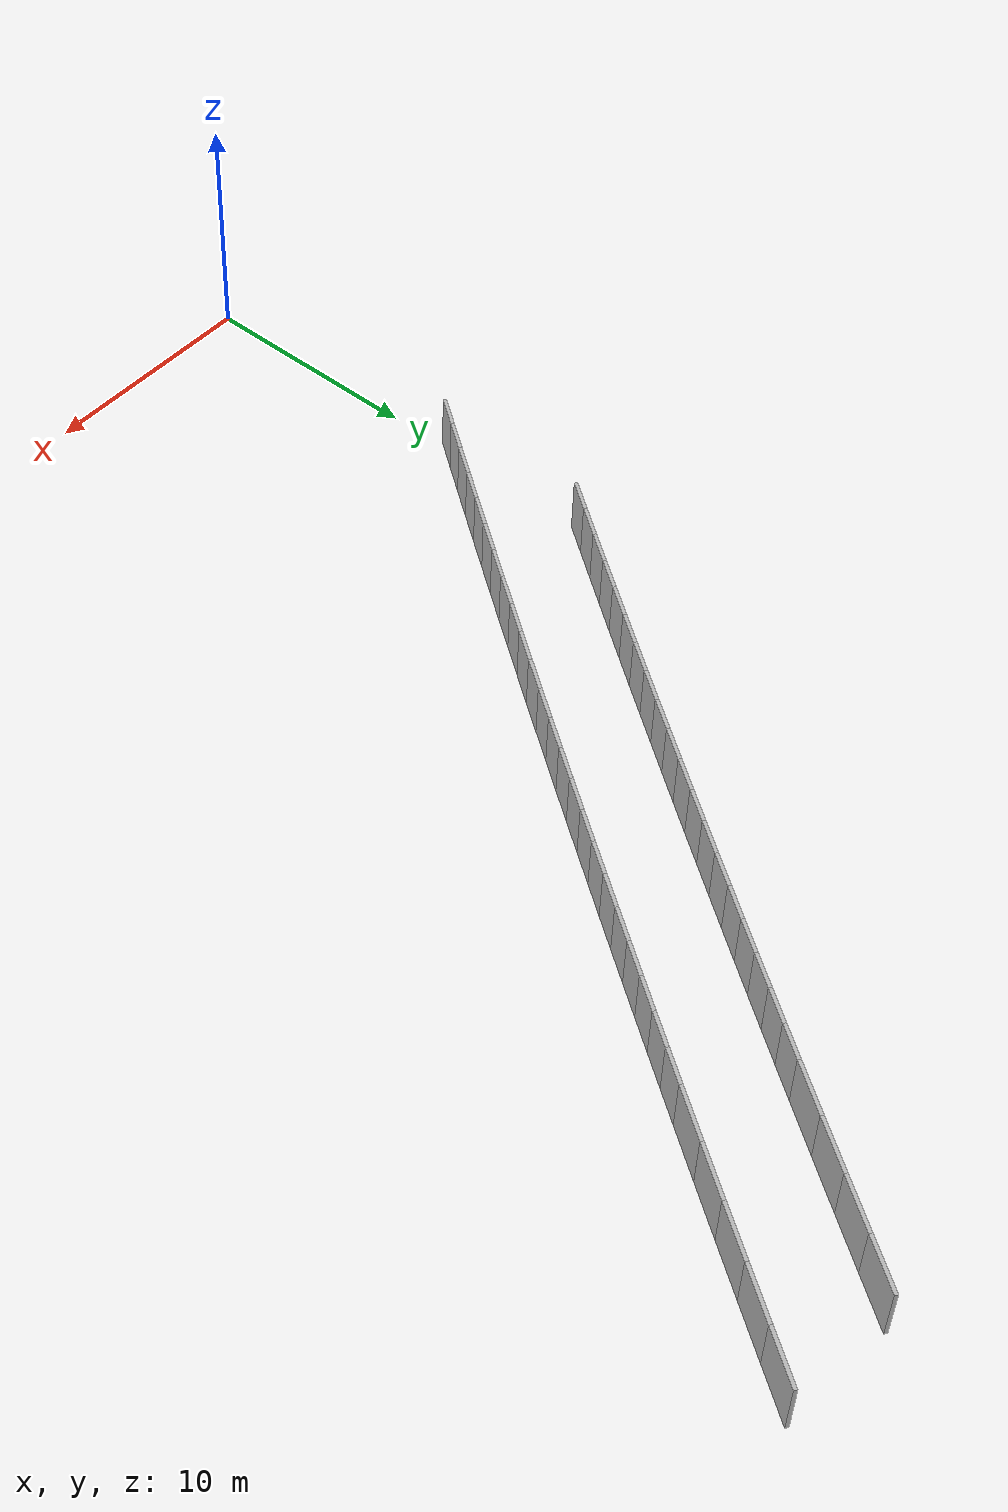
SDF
<?xml version="1.0" ?>
<sdf version="1.6">
  <model name="sps_4313">
    <pose frame="">0 0 0 0 -0 0</pose>
    <static>1</static>
    <self_collide>0</self_collide>
    <allow_auto_disable>0</allow_auto_disable>
    <link name="Wall4267">
      <kinematic>0</kinematic>
      <gravity>1</gravity>
      <self_collide>0</self_collide>
      <collision name="collision">
        <geometry>
          <box>
            <size>1.50309 0.15 2.5</size>
          </box>
        </geometry>
        <pose frame="">0 0 0 0 -0 0</pose>
      </collision>
      <visual name="visual">
        <geometry>
          <box>
            <size>1.50309 0.15 2.5</size>
          </box>
        </geometry>
        <pose frame="">0 0 0 0 -0 0</pose>
        <cast_shadows>1</cast_shadows>
        <transparency>0.0</transparency>
      </visual>
      <pose frame="">0.239951 13.1362 1.25 0 -0 0.923023</pose>
    </link>
    <link name="Wall4268">
      <kinematic>0</kinematic>
      <gravity>1</gravity>
      <self_collide>0</self_collide>
      <collision name="collision">
        <geometry>
          <box>
            <size>1.50314 0.15 2.5</size>
          </box>
        </geometry>
        <pose frame="">0 0 0 0 -0 0</pose>
      </collision>
      <visual name="visual">
        <geometry>
          <box>
            <size>1.50314 0.15 2.5</size>
          </box>
        </geometry>
        <pose frame="">0 0 0 0 -0 0</pose>
        <cast_shadows>1</cast_shadows>
        <transparency>0.0</transparency>
      </visual>
      <pose frame="">1.14605 14.3355 1.25 0 -0 0.924526</pose>
    </link>
    <link name="Wall4269">
      <kinematic>0</kinematic>
      <gravity>1</gravity>
      <self_collide>0</self_collide>
      <collision name="collision">
        <geometry>
          <box>
            <size>1.50305 0.15 2.5</size>
          </box>
        </geometry>
        <pose frame="">0 0 0 0 -0 0</pose>
      </collision>
      <visual name="visual">
        <geometry>
          <box>
            <size>1.50305 0.15 2.5</size>
          </box>
        </geometry>
        <pose frame="">0 0 0 0 -0 0</pose>
        <cast_shadows>1</cast_shadows>
        <transparency>0.0</transparency>
      </visual>
      <pose frame="">2.05025 15.5362 1.25 0 -0 0.926158</pose>
    </link>
    <link name="Wall4270">
      <kinematic>0</kinematic>
      <gravity>1</gravity>
      <self_collide>0</self_collide>
      <collision name="collision">
        <geometry>
          <box>
            <size>1.50306 0.15 2.5</size>
          </box>
        </geometry>
        <pose frame="">0 0 0 0 -0 0</pose>
      </collision>
      <visual name="visual">
        <geometry>
          <box>
            <size>1.50306 0.15 2.5</size>
          </box>
        </geometry>
        <pose frame="">0 0 0 0 -0 0</pose>
        <cast_shadows>1</cast_shadows>
        <transparency>0.0</transparency>
      </visual>
      <pose frame="">2.95257 16.7383 1.25 0 -0 0.927636</pose>
    </link>
    <link name="Wall4271">
      <kinematic>0</kinematic>
      <gravity>1</gravity>
      <self_collide>0</self_collide>
      <collision name="collision">
        <geometry>
          <box>
            <size>1.50314 0.15 2.5</size>
          </box>
        </geometry>
        <pose frame="">0 0 0 0 -0 0</pose>
      </collision>
      <visual name="visual">
        <geometry>
          <box>
            <size>1.50314 0.15 2.5</size>
          </box>
        </geometry>
        <pose frame="">0 0 0 0 -0 0</pose>
        <cast_shadows>1</cast_shadows>
        <transparency>0.0</transparency>
      </visual>
      <pose frame="">3.85296 17.9419 1.25 0 -0 0.929399</pose>
    </link>
    <link name="Wall4272">
      <kinematic>0</kinematic>
      <gravity>1</gravity>
      <self_collide>0</self_collide>
      <collision name="collision">
        <geometry>
          <box>
            <size>1.5031 0.15 2.5</size>
          </box>
        </geometry>
        <pose frame="">0 0 0 0 -0 0</pose>
      </collision>
      <visual name="visual">
        <geometry>
          <box>
            <size>1.5031 0.15 2.5</size>
          </box>
        </geometry>
        <pose frame="">0 0 0 0 -0 0</pose>
        <cast_shadows>1</cast_shadows>
        <transparency>0.0</transparency>
      </visual>
      <pose frame="">4.75146 19.1469 1.25 0 -0 0.930795</pose>
    </link>
    <link name="Wall4273">
      <kinematic>0</kinematic>
      <gravity>1</gravity>
      <self_collide>0</self_collide>
      <collision name="collision">
        <geometry>
          <box>
            <size>1.50308 0.15 2.5</size>
          </box>
        </geometry>
        <pose frame="">0 0 0 0 -0 0</pose>
      </collision>
      <visual name="visual">
        <geometry>
          <box>
            <size>1.50308 0.15 2.5</size>
          </box>
        </geometry>
        <pose frame="">0 0 0 0 -0 0</pose>
        <cast_shadows>1</cast_shadows>
        <transparency>0.0</transparency>
      </visual>
      <pose frame="">5.64806 20.3533 1.25 0 -0 0.932509</pose>
    </link>
    <link name="Wall4274">
      <kinematic>0</kinematic>
      <gravity>1</gravity>
      <self_collide>0</self_collide>
      <collision name="collision">
        <geometry>
          <box>
            <size>1.5031 0.15 2.5</size>
          </box>
        </geometry>
        <pose frame="">0 0 0 0 -0 0</pose>
      </collision>
      <visual name="visual">
        <geometry>
          <box>
            <size>1.5031 0.15 2.5</size>
          </box>
        </geometry>
        <pose frame="">0 0 0 0 -0 0</pose>
        <cast_shadows>1</cast_shadows>
        <transparency>0.0</transparency>
      </visual>
      <pose frame="">6.54266 21.5612 1.25 0 -0 0.934133</pose>
    </link>
    <link name="Wall4275">
      <kinematic>0</kinematic>
      <gravity>1</gravity>
      <self_collide>0</self_collide>
      <collision name="collision">
        <geometry>
          <box>
            <size>1.50325 0.15 2.5</size>
          </box>
        </geometry>
        <pose frame="">0 0 0 0 -0 0</pose>
      </collision>
      <visual name="visual">
        <geometry>
          <box>
            <size>1.50325 0.15 2.5</size>
          </box>
        </geometry>
        <pose frame="">0 0 0 0 -0 0</pose>
        <cast_shadows>1</cast_shadows>
        <transparency>0.0</transparency>
      </visual>
      <pose frame="">7.43545 22.7705 1.25 0 -0 0.93557</pose>
    </link>
    <link name="Wall4276">
      <kinematic>0</kinematic>
      <gravity>1</gravity>
      <self_collide>0</self_collide>
      <collision name="collision">
        <geometry>
          <box>
            <size>1.50292 0.15 2.5</size>
          </box>
        </geometry>
        <pose frame="">0 0 0 0 -0 0</pose>
      </collision>
      <visual name="visual">
        <geometry>
          <box>
            <size>1.50292 0.15 2.5</size>
          </box>
        </geometry>
        <pose frame="">0 0 0 0 -0 0</pose>
        <cast_shadows>1</cast_shadows>
        <transparency>0.0</transparency>
      </visual>
      <pose frame="">8.32635 23.9811 1.25 0 -0 0.937172</pose>
    </link>
    <link name="Wall4277">
      <kinematic>0</kinematic>
      <gravity>1</gravity>
      <self_collide>0</self_collide>
      <collision name="collision">
        <geometry>
          <box>
            <size>1.50368 0.15 2.5</size>
          </box>
        </geometry>
        <pose frame="">0 0 0 0 -0 0</pose>
      </collision>
      <visual name="visual">
        <geometry>
          <box>
            <size>1.50368 0.15 2.5</size>
          </box>
        </geometry>
        <pose frame="">0 0 0 0 -0 0</pose>
        <cast_shadows>1</cast_shadows>
        <transparency>0.0</transparency>
      </visual>
      <pose frame="">9.21545 25.1933 1.25 0 -0 0.93875</pose>
    </link>
    <link name="Wall4278">
      <kinematic>0</kinematic>
      <gravity>1</gravity>
      <self_collide>0</self_collide>
      <collision name="collision">
        <geometry>
          <box>
            <size>1.50314 0.15 2.5</size>
          </box>
        </geometry>
        <pose frame="">0 0 0 0 -0 0</pose>
      </collision>
      <visual name="visual">
        <geometry>
          <box>
            <size>1.50314 0.15 2.5</size>
          </box>
        </geometry>
        <pose frame="">0 0 0 0 -0 0</pose>
        <cast_shadows>1</cast_shadows>
        <transparency>0.0</transparency>
      </visual>
      <pose frame="">10.1027 26.407 1.25 0 -0 0.940403</pose>
    </link>
    <link name="Wall4279">
      <kinematic>0</kinematic>
      <gravity>1</gravity>
      <self_collide>0</self_collide>
      <collision name="collision">
        <geometry>
          <box>
            <size>1.50312 0.15 2.5</size>
          </box>
        </geometry>
        <pose frame="">0 0 0 0 -0 0</pose>
      </collision>
      <visual name="visual">
        <geometry>
          <box>
            <size>1.50312 0.15 2.5</size>
          </box>
        </geometry>
        <pose frame="">0 0 0 0 -0 0</pose>
        <cast_shadows>1</cast_shadows>
        <transparency>0.0</transparency>
      </visual>
      <pose frame="">10.9878 27.6219 1.25 0 -0 0.941946</pose>
    </link>
    <link name="Wall4280">
      <kinematic>0</kinematic>
      <gravity>1</gravity>
      <self_collide>0</self_collide>
      <collision name="collision">
        <geometry>
          <box>
            <size>1.5031 0.15 2.5</size>
          </box>
        </geometry>
        <pose frame="">0 0 0 0 -0 0</pose>
      </collision>
      <visual name="visual">
        <geometry>
          <box>
            <size>1.5031 0.15 2.5</size>
          </box>
        </geometry>
        <pose frame="">0 0 0 0 -0 0</pose>
        <cast_shadows>1</cast_shadows>
        <transparency>0.0</transparency>
      </visual>
      <pose frame="">11.8709 28.8382 1.25 0 -0 0.943546</pose>
    </link>
    <link name="Wall4281">
      <kinematic>0</kinematic>
      <gravity>1</gravity>
      <self_collide>0</self_collide>
      <collision name="collision">
        <geometry>
          <box>
            <size>1.50315 0.15 2.5</size>
          </box>
        </geometry>
        <pose frame="">0 0 0 0 -0 0</pose>
      </collision>
      <visual name="visual">
        <geometry>
          <box>
            <size>1.50315 0.15 2.5</size>
          </box>
        </geometry>
        <pose frame="">0 0 0 0 -0 0</pose>
        <cast_shadows>1</cast_shadows>
        <transparency>0.0</transparency>
      </visual>
      <pose frame="">12.7522 30.0559 1.25 0 -0 0.94517</pose>
    </link>
    <link name="Wall4282">
      <kinematic>0</kinematic>
      <gravity>1</gravity>
      <self_collide>0</self_collide>
      <collision name="collision">
        <geometry>
          <box>
            <size>1.50302 0.15 2.5</size>
          </box>
        </geometry>
        <pose frame="">0 0 0 0 -0 0</pose>
      </collision>
      <visual name="visual">
        <geometry>
          <box>
            <size>1.50302 0.15 2.5</size>
          </box>
        </geometry>
        <pose frame="">0 0 0 0 -0 0</pose>
        <cast_shadows>1</cast_shadows>
        <transparency>0.0</transparency>
      </visual>
      <pose frame="">13.6314 31.275 1.25 0 -0 0.946813</pose>
    </link>
    <link name="Wall4283">
      <kinematic>0</kinematic>
      <gravity>1</gravity>
      <self_collide>0</self_collide>
      <collision name="collision">
        <geometry>
          <box>
            <size>1.50313 0.15 2.5</size>
          </box>
        </geometry>
        <pose frame="">0 0 0 0 -0 0</pose>
      </collision>
      <visual name="visual">
        <geometry>
          <box>
            <size>1.50313 0.15 2.5</size>
          </box>
        </geometry>
        <pose frame="">0 0 0 0 -0 0</pose>
        <cast_shadows>1</cast_shadows>
        <transparency>0.0</transparency>
      </visual>
      <pose frame="">14.5087 32.4955 1.25 0 -0 0.948314</pose>
    </link>
    <link name="Wall4284">
      <kinematic>0</kinematic>
      <gravity>1</gravity>
      <self_collide>0</self_collide>
      <collision name="collision">
        <geometry>
          <box>
            <size>1.50295 0.15 2.5</size>
          </box>
        </geometry>
        <pose frame="">0 0 0 0 -0 0</pose>
      </collision>
      <visual name="visual">
        <geometry>
          <box>
            <size>1.50295 0.15 2.5</size>
          </box>
        </geometry>
        <pose frame="">0 0 0 0 -0 0</pose>
        <cast_shadows>1</cast_shadows>
        <transparency>0.0</transparency>
      </visual>
      <pose frame="">15.3841 33.7173 1.25 0 -0 0.949876</pose>
    </link>
    <link name="Wall4285">
      <kinematic>0</kinematic>
      <gravity>1</gravity>
      <self_collide>0</self_collide>
      <collision name="collision">
        <geometry>
          <box>
            <size>1.50307 0.15 2.5</size>
          </box>
        </geometry>
        <pose frame="">0 0 0 0 -0 0</pose>
      </collision>
      <visual name="visual">
        <geometry>
          <box>
            <size>1.50307 0.15 2.5</size>
          </box>
        </geometry>
        <pose frame="">0 0 0 0 -0 0</pose>
        <cast_shadows>1</cast_shadows>
        <transparency>0.0</transparency>
      </visual>
      <pose frame="">16.2574 34.9405 1.25 0 -0 0.951581</pose>
    </link>
    <link name="Wall4286">
      <kinematic>0</kinematic>
      <gravity>1</gravity>
      <self_collide>0</self_collide>
      <collision name="collision">
        <geometry>
          <box>
            <size>1.50299 0.15 2.5</size>
          </box>
        </geometry>
        <pose frame="">0 0 0 0 -0 0</pose>
      </collision>
      <visual name="visual">
        <geometry>
          <box>
            <size>1.50299 0.15 2.5</size>
          </box>
        </geometry>
        <pose frame="">0 0 0 0 -0 0</pose>
        <cast_shadows>1</cast_shadows>
        <transparency>0.0</transparency>
      </visual>
      <pose frame="">17.1289 36.1651 1.25 0 -0 0.952987</pose>
    </link>
    <link name="Wall4287">
      <kinematic>0</kinematic>
      <gravity>1</gravity>
      <self_collide>0</self_collide>
      <collision name="collision">
        <geometry>
          <box>
            <size>1.5032 0.15 2.5</size>
          </box>
        </geometry>
        <pose frame="">0 0 0 0 -0 0</pose>
      </collision>
      <visual name="visual">
        <geometry>
          <box>
            <size>1.5032 0.15 2.5</size>
          </box>
        </geometry>
        <pose frame="">0 0 0 0 -0 0</pose>
        <cast_shadows>1</cast_shadows>
        <transparency>0.0</transparency>
      </visual>
      <pose frame="">17.9986 37.3911 1.25 0 -0 0.954682</pose>
    </link>
    <link name="Wall4288">
      <kinematic>0</kinematic>
      <gravity>1</gravity>
      <self_collide>0</self_collide>
      <collision name="collision">
        <geometry>
          <box>
            <size>1.50325 0.15 2.5</size>
          </box>
        </geometry>
        <pose frame="">0 0 0 0 -0 0</pose>
      </collision>
      <visual name="visual">
        <geometry>
          <box>
            <size>1.50325 0.15 2.5</size>
          </box>
        </geometry>
        <pose frame="">0 0 0 0 -0 0</pose>
        <cast_shadows>1</cast_shadows>
        <transparency>0.0</transparency>
      </visual>
      <pose frame="">18.8663 38.6186 1.25 0 -0 0.956248</pose>
    </link>
    <link name="Wall4289">
      <kinematic>0</kinematic>
      <gravity>1</gravity>
      <self_collide>0</self_collide>
      <collision name="collision">
        <geometry>
          <box>
            <size>1.50313 0.15 2.5</size>
          </box>
        </geometry>
        <pose frame="">0 0 0 0 -0 0</pose>
      </collision>
      <visual name="visual">
        <geometry>
          <box>
            <size>1.50313 0.15 2.5</size>
          </box>
        </geometry>
        <pose frame="">0 0 0 0 -0 0</pose>
        <cast_shadows>1</cast_shadows>
        <transparency>0.0</transparency>
      </visual>
      <pose frame="">19.732 39.8474 1.25 0 -0 0.957778</pose>
    </link>
    <link name="Wall4290">
      <kinematic>0</kinematic>
      <gravity>1</gravity>
      <self_collide>0</self_collide>
      <collision name="collision">
        <geometry>
          <box>
            <size>2.25437 0.15 2.5</size>
          </box>
        </geometry>
        <pose frame="">0 0 0 0 -0 0</pose>
      </collision>
      <visual name="visual">
        <geometry>
          <box>
            <size>2.25437 0.15 2.5</size>
          </box>
        </geometry>
        <pose frame="">0 0 0 0 -0 0</pose>
        <cast_shadows>1</cast_shadows>
        <transparency>0.0</transparency>
      </visual>
      <pose frame="">20.8111 41.3854 1.25 0 -0 0.959844</pose>
    </link>
    <link name="Wall4291">
      <kinematic>0</kinematic>
      <gravity>1</gravity>
      <self_collide>0</self_collide>
      <collision name="collision">
        <geometry>
          <box>
            <size>2.25446 0.15 2.5</size>
          </box>
        </geometry>
        <pose frame="">0 0 0 0 -0 0</pose>
      </collision>
      <visual name="visual">
        <geometry>
          <box>
            <size>2.25446 0.15 2.5</size>
          </box>
        </geometry>
        <pose frame="">0 0 0 0 -0 0</pose>
        <cast_shadows>1</cast_shadows>
        <transparency>0.0</transparency>
      </visual>
      <pose frame="">22.1022 43.2335 1.25 0 -0 0.962151</pose>
    </link>
    <link name="Wall4292">
      <kinematic>0</kinematic>
      <gravity>1</gravity>
      <self_collide>0</self_collide>
      <collision name="collision">
        <geometry>
          <box>
            <size>2.25441 0.15 2.5</size>
          </box>
        </geometry>
        <pose frame="">0 0 0 0 -0 0</pose>
      </collision>
      <visual name="visual">
        <geometry>
          <box>
            <size>2.25441 0.15 2.5</size>
          </box>
        </geometry>
        <pose frame="">0 0 0 0 -0 0</pose>
        <cast_shadows>1</cast_shadows>
        <transparency>0.0</transparency>
      </visual>
      <pose frame="">23.389 45.0846 1.25 0 -0 0.964509</pose>
    </link>
    <link name="Wall4293">
      <kinematic>0</kinematic>
      <gravity>1</gravity>
      <self_collide>0</self_collide>
      <collision name="collision">
        <geometry>
          <box>
            <size>2.25487 0.15 2.5</size>
          </box>
        </geometry>
        <pose frame="">0 0 0 0 -0 0</pose>
      </collision>
      <visual name="visual">
        <geometry>
          <box>
            <size>2.25487 0.15 2.5</size>
          </box>
        </geometry>
        <pose frame="">0 0 0 0 -0 0</pose>
        <cast_shadows>1</cast_shadows>
        <transparency>0.0</transparency>
      </visual>
      <pose frame="">24.6714 46.939 1.25 0 -0 0.96702</pose>
    </link>
    <link name="Wall4294">
      <kinematic>0</kinematic>
      <gravity>1</gravity>
      <self_collide>0</self_collide>
      <collision name="collision">
        <geometry>
          <box>
            <size>2.25466 0.15 2.5</size>
          </box>
        </geometry>
        <pose frame="">0 0 0 0 -0 0</pose>
      </collision>
      <visual name="visual">
        <geometry>
          <box>
            <size>2.25466 0.15 2.5</size>
          </box>
        </geometry>
        <pose frame="">0 0 0 0 -0 0</pose>
        <cast_shadows>1</cast_shadows>
        <transparency>0.0</transparency>
      </visual>
      <pose frame="">25.9494 48.7966 1.25 0 -0 0.969354</pose>
    </link>
    <link name="Wall5996">
      <kinematic>0</kinematic>
      <gravity>1</gravity>
      <self_collide>0</self_collide>
      <collision name="collision">
        <geometry>
          <box>
            <size>1.49641 0.15 2.5</size>
          </box>
        </geometry>
        <pose frame="">0 0 0 0 -0 0</pose>
      </collision>
      <visual name="visual">
        <geometry>
          <box>
            <size>1.49641 0.15 2.5</size>
          </box>
        </geometry>
        <pose frame="">0 0 0 0 -0 0</pose>
        <cast_shadows>1</cast_shadows>
        <transparency>0.0</transparency>
      </visual>
      <pose frame="">0.536948 20.4194 1.25 0 -0 0.929351</pose>
    </link>
    <link name="Wall5997">
      <kinematic>0</kinematic>
      <gravity>1</gravity>
      <self_collide>0</self_collide>
      <collision name="collision">
        <geometry>
          <box>
            <size>1.49653 0.15 2.5</size>
          </box>
        </geometry>
        <pose frame="">0 0 0 0 -0 0</pose>
      </collision>
      <visual name="visual">
        <geometry>
          <box>
            <size>1.49653 0.15 2.5</size>
          </box>
        </geometry>
        <pose frame="">0 0 0 0 -0 0</pose>
        <cast_shadows>1</cast_shadows>
        <transparency>0.0</transparency>
      </visual>
      <pose frame="">1.43145 21.6191 1.25 0 -0 0.930884</pose>
    </link>
    <link name="Wall5998">
      <kinematic>0</kinematic>
      <gravity>1</gravity>
      <self_collide>0</self_collide>
      <collision name="collision">
        <geometry>
          <box>
            <size>1.49655 0.15 2.5</size>
          </box>
        </geometry>
        <pose frame="">0 0 0 0 -0 0</pose>
      </collision>
      <visual name="visual">
        <geometry>
          <box>
            <size>1.49655 0.15 2.5</size>
          </box>
        </geometry>
        <pose frame="">0 0 0 0 -0 0</pose>
        <cast_shadows>1</cast_shadows>
        <transparency>0.0</transparency>
      </visual>
      <pose frame="">2.32406 22.8203 1.25 0 -0 0.932573</pose>
    </link>
    <link name="Wall5999">
      <kinematic>0</kinematic>
      <gravity>1</gravity>
      <self_collide>0</self_collide>
      <collision name="collision">
        <geometry>
          <box>
            <size>1.49645 0.15 2.5</size>
          </box>
        </geometry>
        <pose frame="">0 0 0 0 -0 0</pose>
      </collision>
      <visual name="visual">
        <geometry>
          <box>
            <size>1.49645 0.15 2.5</size>
          </box>
        </geometry>
        <pose frame="">0 0 0 0 -0 0</pose>
        <cast_shadows>1</cast_shadows>
        <transparency>0.0</transparency>
      </visual>
      <pose frame="">3.21474 24.0229 1.25 0 -0 0.934041</pose>
    </link>
    <link name="Wall6000">
      <kinematic>0</kinematic>
      <gravity>1</gravity>
      <self_collide>0</self_collide>
      <collision name="collision">
        <geometry>
          <box>
            <size>1.49657 0.15 2.5</size>
          </box>
        </geometry>
        <pose frame="">0 0 0 0 -0 0</pose>
      </collision>
      <visual name="visual">
        <geometry>
          <box>
            <size>1.49657 0.15 2.5</size>
          </box>
        </geometry>
        <pose frame="">0 0 0 0 -0 0</pose>
        <cast_shadows>1</cast_shadows>
        <transparency>0.0</transparency>
      </visual>
      <pose frame="">4.10363 25.2268 1.25 0 -0 0.935574</pose>
    </link>
    <link name="Wall6001">
      <kinematic>0</kinematic>
      <gravity>1</gravity>
      <self_collide>0</self_collide>
      <collision name="collision">
        <geometry>
          <box>
            <size>1.4965 0.15 2.5</size>
          </box>
        </geometry>
        <pose frame="">0 0 0 0 -0 0</pose>
      </collision>
      <visual name="visual">
        <geometry>
          <box>
            <size>1.4965 0.15 2.5</size>
          </box>
        </geometry>
        <pose frame="">0 0 0 0 -0 0</pose>
        <cast_shadows>1</cast_shadows>
        <transparency>0.0</transparency>
      </visual>
      <pose frame="">4.99065 26.4321 1.25 0 -0 0.937157</pose>
    </link>
    <link name="Wall6002">
      <kinematic>0</kinematic>
      <gravity>1</gravity>
      <self_collide>0</self_collide>
      <collision name="collision">
        <geometry>
          <box>
            <size>1.49666 0.15 2.5</size>
          </box>
        </geometry>
        <pose frame="">0 0 0 0 -0 0</pose>
      </collision>
      <visual name="visual">
        <geometry>
          <box>
            <size>1.49666 0.15 2.5</size>
          </box>
        </geometry>
        <pose frame="">0 0 0 0 -0 0</pose>
        <cast_shadows>1</cast_shadows>
        <transparency>0.0</transparency>
      </visual>
      <pose frame="">5.87575 27.6389 1.25 0 -0 0.938804</pose>
    </link>
    <link name="Wall6003">
      <kinematic>0</kinematic>
      <gravity>1</gravity>
      <self_collide>0</self_collide>
      <collision name="collision">
        <geometry>
          <box>
            <size>1.49638 0.15 2.5</size>
          </box>
        </geometry>
        <pose frame="">0 0 0 0 -0 0</pose>
      </collision>
      <visual name="visual">
        <geometry>
          <box>
            <size>1.49638 0.15 2.5</size>
          </box>
        </geometry>
        <pose frame="">0 0 0 0 -0 0</pose>
        <cast_shadows>1</cast_shadows>
        <transparency>0.0</transparency>
      </visual>
      <pose frame="">6.75884 28.8471 1.25 0 -0 0.940438</pose>
    </link>
    <link name="Wall6004">
      <kinematic>0</kinematic>
      <gravity>1</gravity>
      <self_collide>0</self_collide>
      <collision name="collision">
        <geometry>
          <box>
            <size>1.49659 0.15 2.5</size>
          </box>
        </geometry>
        <pose frame="">0 0 0 0 -0 0</pose>
      </collision>
      <visual name="visual">
        <geometry>
          <box>
            <size>1.49659 0.15 2.5</size>
          </box>
        </geometry>
        <pose frame="">0 0 0 0 -0 0</pose>
        <cast_shadows>1</cast_shadows>
        <transparency>0.0</transparency>
      </visual>
      <pose frame="">7.63995 30.0567 1.25 0 -0 0.942051</pose>
    </link>
    <link name="Wall6005">
      <kinematic>0</kinematic>
      <gravity>1</gravity>
      <self_collide>0</self_collide>
      <collision name="collision">
        <geometry>
          <box>
            <size>1.49668 0.15 2.5</size>
          </box>
        </geometry>
        <pose frame="">0 0 0 0 -0 0</pose>
      </collision>
      <visual name="visual">
        <geometry>
          <box>
            <size>1.49668 0.15 2.5</size>
          </box>
        </geometry>
        <pose frame="">0 0 0 0 -0 0</pose>
        <cast_shadows>1</cast_shadows>
        <transparency>0.0</transparency>
      </visual>
      <pose frame="">8.51925 31.2678 1.25 0 -0 0.943559</pose>
    </link>
    <link name="Wall6006">
      <kinematic>0</kinematic>
      <gravity>1</gravity>
      <self_collide>0</self_collide>
      <collision name="collision">
        <geometry>
          <box>
            <size>1.49719 0.15 2.5</size>
          </box>
        </geometry>
        <pose frame="">0 0 0 0 -0 0</pose>
      </collision>
      <visual name="visual">
        <geometry>
          <box>
            <size>1.49719 0.15 2.5</size>
          </box>
        </geometry>
        <pose frame="">0 0 0 0 -0 0</pose>
        <cast_shadows>1</cast_shadows>
        <transparency>0.0</transparency>
      </visual>
      <pose frame="">9.39696 32.4804 1.25 0 -0 0.944964</pose>
    </link>
    <link name="Wall6007">
      <kinematic>0</kinematic>
      <gravity>1</gravity>
      <self_collide>0</self_collide>
      <collision name="collision">
        <geometry>
          <box>
            <size>1.4964 0.15 2.5</size>
          </box>
        </geometry>
        <pose frame="">0 0 0 0 -0 0</pose>
      </collision>
      <visual name="visual">
        <geometry>
          <box>
            <size>1.4964 0.15 2.5</size>
          </box>
        </geometry>
        <pose frame="">0 0 0 0 -0 0</pose>
        <cast_shadows>1</cast_shadows>
        <transparency>0.0</transparency>
      </visual>
      <pose frame="">10.2727 33.6943 1.25 0 -0 0.946744</pose>
    </link>
    <link name="Wall6008">
      <kinematic>0</kinematic>
      <gravity>1</gravity>
      <self_collide>0</self_collide>
      <collision name="collision">
        <geometry>
          <box>
            <size>1.49671 0.15 2.5</size>
          </box>
        </geometry>
        <pose frame="">0 0 0 0 -0 0</pose>
      </collision>
      <visual name="visual">
        <geometry>
          <box>
            <size>1.49671 0.15 2.5</size>
          </box>
        </geometry>
        <pose frame="">0 0 0 0 -0 0</pose>
        <cast_shadows>1</cast_shadows>
        <transparency>0.0</transparency>
      </visual>
      <pose frame="">11.1462 34.9095 1.25 0 -0 0.948347</pose>
    </link>
    <link name="Wall6009">
      <kinematic>0</kinematic>
      <gravity>1</gravity>
      <self_collide>0</self_collide>
      <collision name="collision">
        <geometry>
          <box>
            <size>1.49638 0.15 2.5</size>
          </box>
        </geometry>
        <pose frame="">0 0 0 0 -0 0</pose>
      </collision>
      <visual name="visual">
        <geometry>
          <box>
            <size>1.49638 0.15 2.5</size>
          </box>
        </geometry>
        <pose frame="">0 0 0 0 -0 0</pose>
        <cast_shadows>1</cast_shadows>
        <transparency>0.0</transparency>
      </visual>
      <pose frame="">12.0178 36.126 1.25 0 -0 0.949845</pose>
    </link>
    <link name="Wall6010">
      <kinematic>0</kinematic>
      <gravity>1</gravity>
      <self_collide>0</self_collide>
      <collision name="collision">
        <geometry>
          <box>
            <size>1.49645 0.15 2.5</size>
          </box>
        </geometry>
        <pose frame="">0 0 0 0 -0 0</pose>
      </collision>
      <visual name="visual">
        <geometry>
          <box>
            <size>1.49645 0.15 2.5</size>
          </box>
        </geometry>
        <pose frame="">0 0 0 0 -0 0</pose>
        <cast_shadows>1</cast_shadows>
        <transparency>0.0</transparency>
      </visual>
      <pose frame="">12.8874 37.3438 1.25 0 -0 0.951533</pose>
    </link>
    <link name="Wall6011">
      <kinematic>0</kinematic>
      <gravity>1</gravity>
      <self_collide>0</self_collide>
      <collision name="collision">
        <geometry>
          <box>
            <size>1.49658 0.15 2.5</size>
          </box>
        </geometry>
        <pose frame="">0 0 0 0 -0 0</pose>
      </collision>
      <visual name="visual">
        <geometry>
          <box>
            <size>1.49658 0.15 2.5</size>
          </box>
        </geometry>
        <pose frame="">0 0 0 0 -0 0</pose>
        <cast_shadows>1</cast_shadows>
        <transparency>0.0</transparency>
      </visual>
      <pose frame="">13.7551 38.5631 1.25 0 -0 0.953097</pose>
    </link>
    <link name="Wall6012">
      <kinematic>0</kinematic>
      <gravity>1</gravity>
      <self_collide>0</self_collide>
      <collision name="collision">
        <geometry>
          <box>
            <size>1.4964 0.15 2.5</size>
          </box>
        </geometry>
        <pose frame="">0 0 0 0 -0 0</pose>
      </collision>
      <visual name="visual">
        <geometry>
          <box>
            <size>1.4964 0.15 2.5</size>
          </box>
        </geometry>
        <pose frame="">0 0 0 0 -0 0</pose>
        <cast_shadows>1</cast_shadows>
        <transparency>0.0</transparency>
      </visual>
      <pose frame="">14.6208 39.7837 1.25 0 -0 0.95461</pose>
    </link>
    <link name="Wall6013">
      <kinematic>0</kinematic>
      <gravity>1</gravity>
      <self_collide>0</self_collide>
      <collision name="collision">
        <geometry>
          <box>
            <size>1.49638 0.15 2.5</size>
          </box>
        </geometry>
        <pose frame="">0 0 0 0 -0 0</pose>
      </collision>
      <visual name="visual">
        <geometry>
          <box>
            <size>1.49638 0.15 2.5</size>
          </box>
        </geometry>
        <pose frame="">0 0 0 0 -0 0</pose>
        <cast_shadows>1</cast_shadows>
        <transparency>0.0</transparency>
      </visual>
      <pose frame="">15.4846 41.0056 1.25 0 -0 0.956251</pose>
    </link>
    <link name="Wall6014">
      <kinematic>0</kinematic>
      <gravity>1</gravity>
      <self_collide>0</self_collide>
      <collision name="collision">
        <geometry>
          <box>
            <size>1.4964 0.15 2.5</size>
          </box>
        </geometry>
        <pose frame="">0 0 0 0 -0 0</pose>
      </collision>
      <visual name="visual">
        <geometry>
          <box>
            <size>1.4964 0.15 2.5</size>
          </box>
        </geometry>
        <pose frame="">0 0 0 0 -0 0</pose>
        <cast_shadows>1</cast_shadows>
        <transparency>0.0</transparency>
      </visual>
      <pose frame="">16.3465 42.2289 1.25 0 -0 0.957858</pose>
    </link>
    <link name="Wall6015">
      <kinematic>0</kinematic>
      <gravity>1</gravity>
      <self_collide>0</self_collide>
      <collision name="collision">
        <geometry>
          <box>
            <size>2.2449 0.15 2.5</size>
          </box>
        </geometry>
        <pose frame="">0 0 0 0 -0 0</pose>
      </collision>
      <visual name="visual">
        <geometry>
          <box>
            <size>2.2449 0.15 2.5</size>
          </box>
        </geometry>
        <pose frame="">0 0 0 0 -0 0</pose>
        <cast_shadows>1</cast_shadows>
        <transparency>0.0</transparency>
      </visual>
      <pose frame="">17.4208 43.7603 1.25 0 -0 0.959845</pose>
    </link>
    <link name="Wall6016">
      <kinematic>0</kinematic>
      <gravity>1</gravity>
      <self_collide>0</self_collide>
      <collision name="collision">
        <geometry>
          <box>
            <size>2.24484 0.15 2.5</size>
          </box>
        </geometry>
        <pose frame="">0 0 0 0 -0 0</pose>
      </collision>
      <visual name="visual">
        <geometry>
          <box>
            <size>2.24484 0.15 2.5</size>
          </box>
        </geometry>
        <pose frame="">0 0 0 0 -0 0</pose>
        <cast_shadows>1</cast_shadows>
        <transparency>0.0</transparency>
      </visual>
      <pose frame="">18.7064 45.6006 1.25 0 -0 0.962213</pose>
    </link>
    <link name="Wall6017">
      <kinematic>0</kinematic>
      <gravity>1</gravity>
      <self_collide>0</self_collide>
      <collision name="collision">
        <geometry>
          <box>
            <size>2.24479 0.15 2.5</size>
          </box>
        </geometry>
        <pose frame="">0 0 0 0 -0 0</pose>
      </collision>
      <visual name="visual">
        <geometry>
          <box>
            <size>2.24479 0.15 2.5</size>
          </box>
        </geometry>
        <pose frame="">0 0 0 0 -0 0</pose>
        <cast_shadows>1</cast_shadows>
        <transparency>0.0</transparency>
      </visual>
      <pose frame="">19.9875 47.4439 1.25 0 -0 0.964581</pose>
    </link>
    <link name="Wall6018">
      <kinematic>0</kinematic>
      <gravity>1</gravity>
      <self_collide>0</self_collide>
      <collision name="collision">
        <geometry>
          <box>
            <size>2.24473 0.15 2.5</size>
          </box>
        </geometry>
        <pose frame="">0 0 0 0 -0 0</pose>
      </collision>
      <visual name="visual">
        <geometry>
          <box>
            <size>2.24473 0.15 2.5</size>
          </box>
        </geometry>
        <pose frame="">0 0 0 0 -0 0</pose>
        <cast_shadows>1</cast_shadows>
        <transparency>0.0</transparency>
      </visual>
      <pose frame="">21.2645 49.2901 1.25 0 -0 0.966813</pose>
    </link>
  </model>
</sdf>
